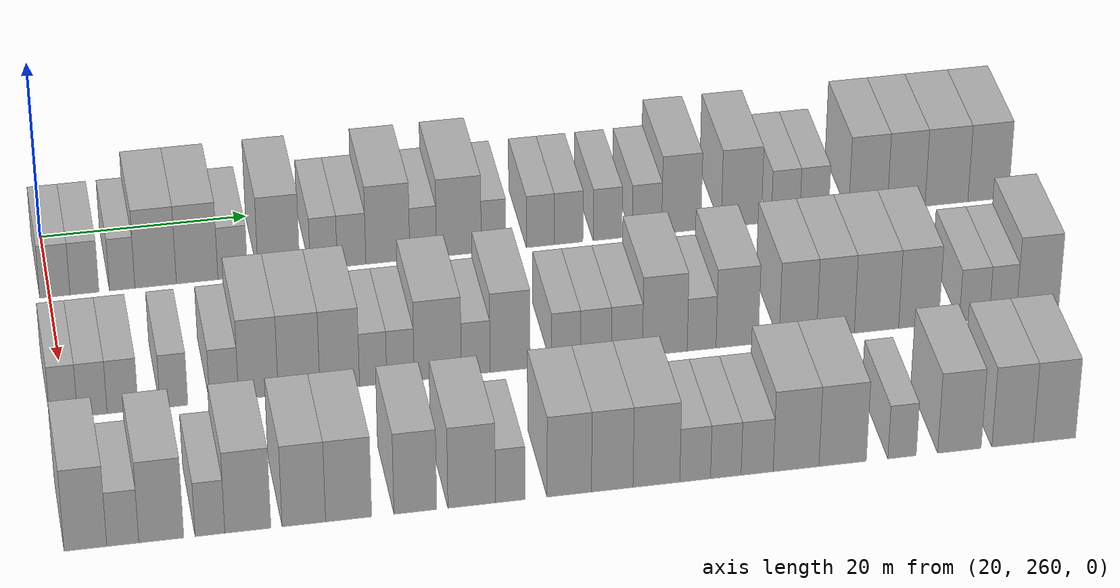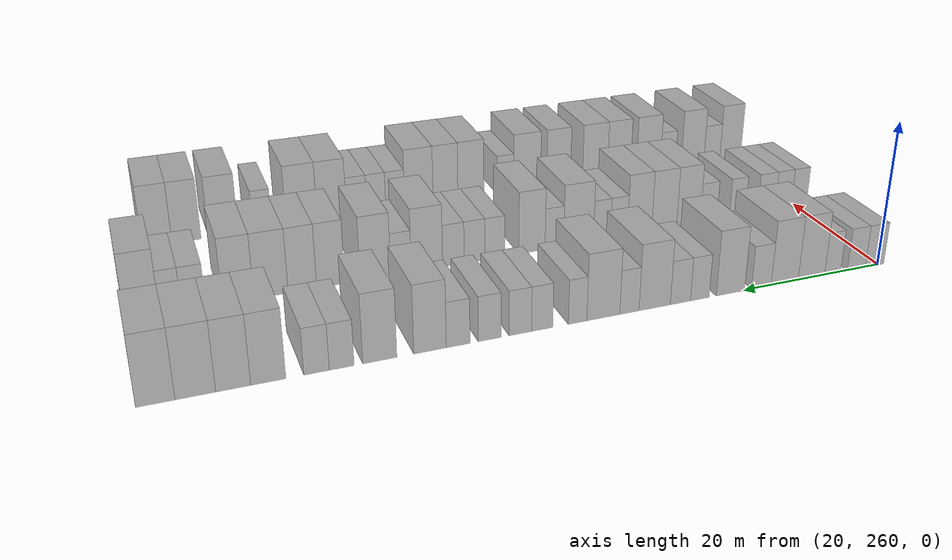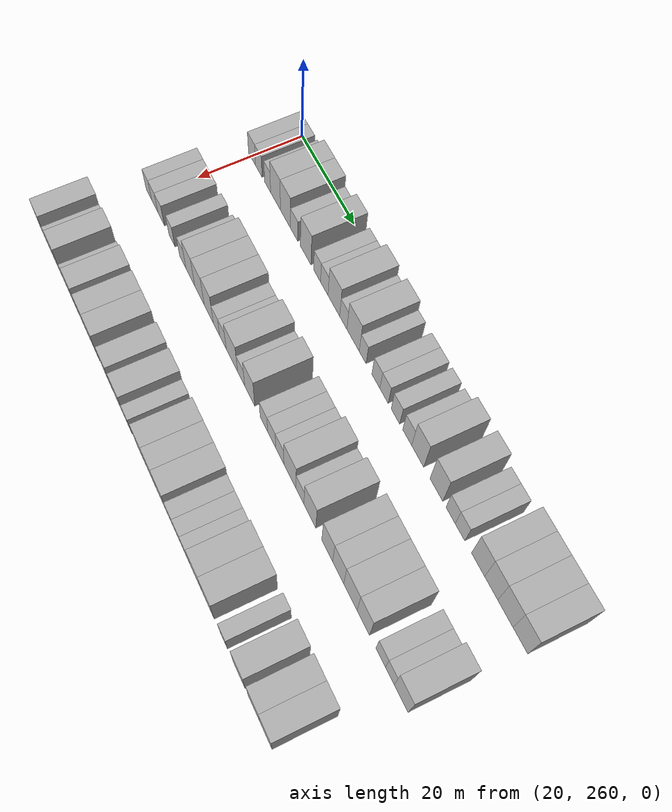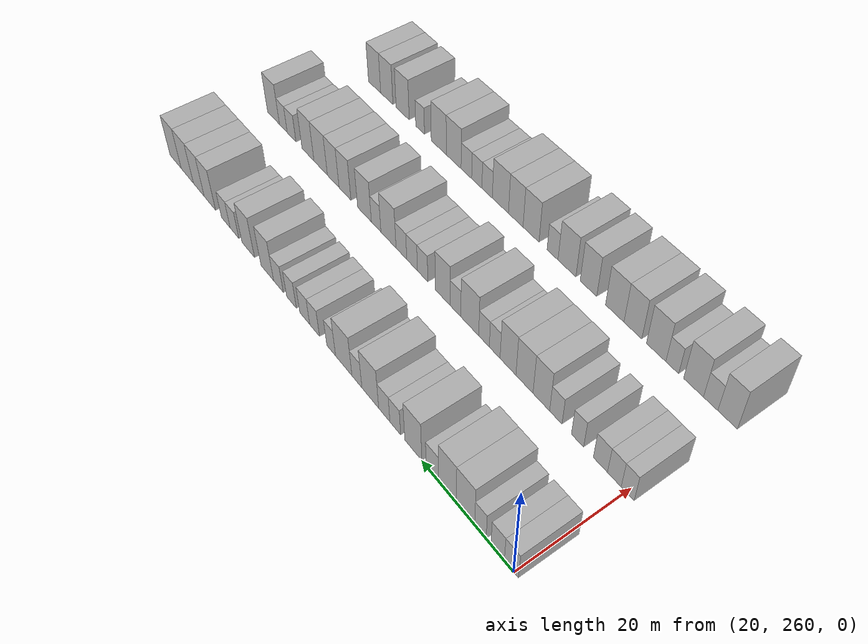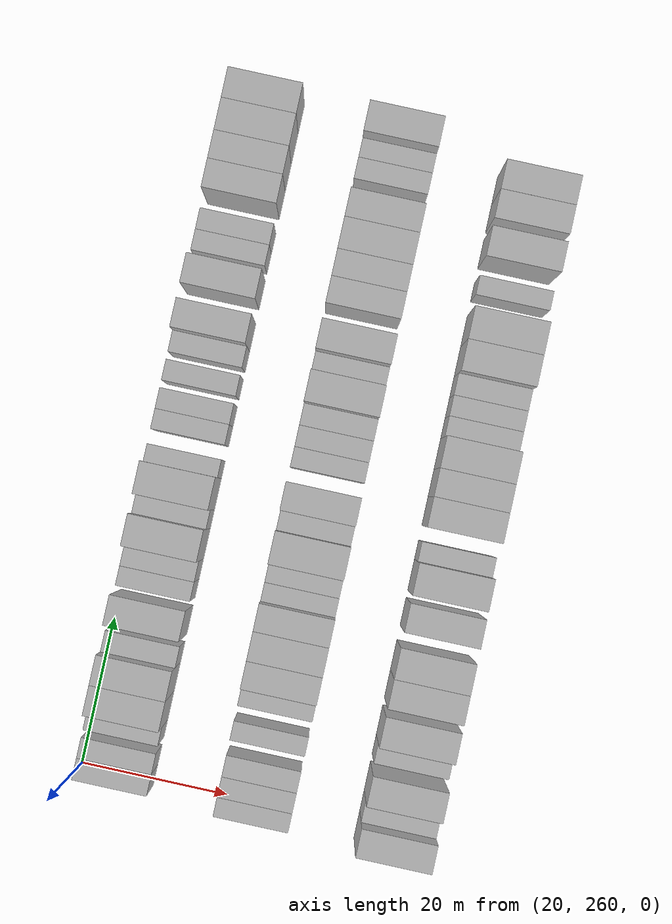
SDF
<sdf version="1.6">
 <world name="default">
  <model name="building_141">
   <static>1</static>
   <pose>25.0000 260.5089 0 0.000000 0.000000 0.000000</pose>
   <link name="link">
    <pose>0 0 3.00 0 0 0</pose>
    <collision name="collision"><geometry><box><size>10.0000 2.8779 6.0000</size></box></geometry></collision>
    <visual name="visual">
     <cast_shadows>0</cast_shadows>
     <geometry><box><size>10.0000 2.8779 6.0000</size></box></geometry>
     <material>
      <script>
       <uri>model://HANNAS_wall/materials/scripts</uri>
       <uri>model://HANNAS_wall/materials/textures</uri>
       <name>vrc/HANNAS_wall</name>
      </script>
     </material>
    </visual>
   </link>
  </model>
  <model name="building_142">
   <static>1</static>
   <pose>25.0000 263.3240 0 0.000000 0.000000 0.000000</pose>
   <link name="link">
    <pose>0 0 3.00 0 0 0</pose>
    <collision name="collision"><geometry><box><size>10.0000 2.7524 6.0000</size></box></geometry></collision>
    <visual name="visual">
     <cast_shadows>0</cast_shadows>
     <geometry><box><size>10.0000 2.7524 6.0000</size></box></geometry>
     <material>
      <script>
       <uri>model://HANNAS_wall/materials/scripts</uri>
       <uri>model://HANNAS_wall/materials/textures</uri>
       <name>vrc/HANNAS_wall</name>
      </script>
     </material>
    </visual>
   </link>
  </model>
  <model name="building_143">
   <static>1</static>
   <pose>25.0000 266.9167 0 0.000000 0.000000 0.000000</pose>
   <link name="link">
    <pose>0 0 3.00 0 0 0</pose>
    <collision name="collision"><geometry><box><size>10.0000 2.4330 6.0000</size></box></geometry></collision>
    <visual name="visual">
     <cast_shadows>0</cast_shadows>
     <geometry><box><size>10.0000 2.4330 6.0000</size></box></geometry>
     <material>
      <script>
       <uri>model://HANNAS_wall/materials/scripts</uri>
       <uri>model://HANNAS_wall/materials/textures</uri>
       <name>vrc/HANNAS_wall</name>
      </script>
     </material>
    </visual>
   </link>
  </model>
  <model name="building_144">
   <static>1</static>
   <pose>25.0000 270.1128 0 0.000000 0.000000 0.000000</pose>
   <link name="link">
    <pose>0 0 4.50 0 0 0</pose>
    <collision name="collision"><geometry><box><size>10.0000 3.9593 9.0000</size></box></geometry></collision>
    <visual name="visual">
     <cast_shadows>0</cast_shadows>
     <geometry><box><size>10.0000 3.9593 9.0000</size></box></geometry>
     <material>
      <script>
       <uri>model://HANNAS_wall/materials/scripts</uri>
       <uri>model://HANNAS_wall/materials/textures</uri>
       <name>vrc/HANNAS_wall</name>
      </script>
     </material>
    </visual>
   </link>
  </model>
  <model name="building_145">
   <static>1</static>
   <pose>25.0000 274.0836 0 0.000000 0.000000 0.000000</pose>
   <link name="link">
    <pose>0 0 4.50 0 0 0</pose>
    <collision name="collision"><geometry><box><size>10.0000 3.9822 9.0000</size></box></geometry></collision>
    <visual name="visual">
     <cast_shadows>0</cast_shadows>
     <geometry><box><size>10.0000 3.9822 9.0000</size></box></geometry>
     <material>
      <script>
       <uri>model://HANNAS_wall/materials/scripts</uri>
       <uri>model://HANNAS_wall/materials/textures</uri>
       <name>vrc/HANNAS_wall</name>
      </script>
     </material>
    </visual>
   </link>
  </model>
  <model name="building_146">
   <static>1</static>
   <pose>25.0000 277.5018 0 0.000000 0.000000 0.000000</pose>
   <link name="link">
    <pose>0 0 3.00 0 0 0</pose>
    <collision name="collision"><geometry><box><size>10.0000 2.8543 6.0000</size></box></geometry></collision>
    <visual name="visual">
     <cast_shadows>0</cast_shadows>
     <geometry><box><size>10.0000 2.8543 6.0000</size></box></geometry>
     <material>
      <script>
       <uri>model://HANNAS_wall/materials/scripts</uri>
       <uri>model://HANNAS_wall/materials/textures</uri>
       <name>vrc/HANNAS_wall</name>
      </script>
     </material>
    </visual>
   </link>
  </model>
  <model name="building_147">
   <static>1</static>
   <pose>25.0000 281.9419 0 0.000000 0.000000 0.000000</pose>
   <link name="link">
    <pose>0 0 4.50 0 0 0</pose>
    <collision name="collision"><geometry><box><size>10.0000 4.0259 9.0000</size></box></geometry></collision>
    <visual name="visual">
     <cast_shadows>0</cast_shadows>
     <geometry><box><size>10.0000 4.0259 9.0000</size></box></geometry>
     <material>
      <script>
       <uri>model://HANNAS_wall/materials/scripts</uri>
       <uri>model://HANNAS_wall/materials/textures</uri>
       <name>vrc/HANNAS_wall</name>
      </script>
     </material>
    </visual>
   </link>
  </model>
  <model name="building_148">
   <static>1</static>
   <pose>25.0000 286.2601 0 0.000000 0.000000 0.000000</pose>
   <link name="link">
    <pose>0 0 3.00 0 0 0</pose>
    <collision name="collision"><geometry><box><size>10.0000 2.6105 6.0000</size></box></geometry></collision>
    <visual name="visual">
     <cast_shadows>0</cast_shadows>
     <geometry><box><size>10.0000 2.6105 6.0000</size></box></geometry>
     <material>
      <script>
       <uri>model://HANNAS_wall/materials/scripts</uri>
       <uri>model://HANNAS_wall/materials/textures</uri>
       <name>vrc/HANNAS_wall</name>
      </script>
     </material>
    </visual>
   </link>
  </model>
  <model name="building_149">
   <static>1</static>
   <pose>25.0000 288.9540 0 0.000000 0.000000 0.000000</pose>
   <link name="link">
    <pose>0 0 3.00 0 0 0</pose>
    <collision name="collision"><geometry><box><size>10.0000 2.7773 6.0000</size></box></geometry></collision>
    <visual name="visual">
     <cast_shadows>0</cast_shadows>
     <geometry><box><size>10.0000 2.7773 6.0000</size></box></geometry>
     <material>
      <script>
       <uri>model://HANNAS_wall/materials/scripts</uri>
       <uri>model://HANNAS_wall/materials/textures</uri>
       <name>vrc/HANNAS_wall</name>
      </script>
     </material>
    </visual>
   </link>
  </model>
  <model name="building_150">
   <static>1</static>
   <pose>25.0000 292.4760 0 0.000000 0.000000 0.000000</pose>
   <link name="link">
    <pose>0 0 4.50 0 0 0</pose>
    <collision name="collision"><geometry><box><size>10.0000 4.2668 9.0000</size></box></geometry></collision>
    <visual name="visual">
     <cast_shadows>0</cast_shadows>
     <geometry><box><size>10.0000 4.2668 9.0000</size></box></geometry>
     <material>
      <script>
       <uri>model://HANNAS_wall/materials/scripts</uri>
       <uri>model://HANNAS_wall/materials/textures</uri>
       <name>vrc/HANNAS_wall</name>
      </script>
     </material>
    </visual>
   </link>
  </model>
  <model name="building_151">
   <static>1</static>
   <pose>25.0000 295.9064 0 0.000000 0.000000 0.000000</pose>
   <link name="link">
    <pose>0 0 3.00 0 0 0</pose>
    <collision name="collision"><geometry><box><size>10.0000 2.5939 6.0000</size></box></geometry></collision>
    <visual name="visual">
     <cast_shadows>0</cast_shadows>
     <geometry><box><size>10.0000 2.5939 6.0000</size></box></geometry>
     <material>
      <script>
       <uri>model://HANNAS_wall/materials/scripts</uri>
       <uri>model://HANNAS_wall/materials/textures</uri>
       <name>vrc/HANNAS_wall</name>
      </script>
     </material>
    </visual>
   </link>
  </model>
  <model name="building_152">
   <static>1</static>
   <pose>25.0000 299.3836 0 0.000000 0.000000 0.000000</pose>
   <link name="link">
    <pose>0 0 4.50 0 0 0</pose>
    <collision name="collision"><geometry><box><size>10.0000 4.3605 9.0000</size></box></geometry></collision>
    <visual name="visual">
     <cast_shadows>0</cast_shadows>
     <geometry><box><size>10.0000 4.3605 9.0000</size></box></geometry>
     <material>
      <script>
       <uri>model://HANNAS_wall/materials/scripts</uri>
       <uri>model://HANNAS_wall/materials/textures</uri>
       <name>vrc/HANNAS_wall</name>
      </script>
     </material>
    </visual>
   </link>
  </model>
  <model name="building_153">
   <static>1</static>
   <pose>25.0000 302.7668 0 0.000000 0.000000 0.000000</pose>
   <link name="link">
    <pose>0 0 3.00 0 0 0</pose>
    <collision name="collision"><geometry><box><size>10.0000 2.4058 6.0000</size></box></geometry></collision>
    <visual name="visual">
     <cast_shadows>0</cast_shadows>
     <geometry><box><size>10.0000 2.4058 6.0000</size></box></geometry>
     <material>
      <script>
       <uri>model://HANNAS_wall/materials/scripts</uri>
       <uri>model://HANNAS_wall/materials/textures</uri>
       <name>vrc/HANNAS_wall</name>
      </script>
     </material>
    </visual>
   </link>
  </model>
  <model name="building_154">
   <static>1</static>
   <pose>25.0000 307.3375 0 0.000000 0.000000 0.000000</pose>
   <link name="link">
    <pose>0 0 3.00 0 0 0</pose>
    <collision name="collision"><geometry><box><size>10.0000 2.7355 6.0000</size></box></geometry></collision>
    <visual name="visual">
     <cast_shadows>0</cast_shadows>
     <geometry><box><size>10.0000 2.7355 6.0000</size></box></geometry>
     <material>
      <script>
       <uri>model://HANNAS_wall/materials/scripts</uri>
       <uri>model://HANNAS_wall/materials/textures</uri>
       <name>vrc/HANNAS_wall</name>
      </script>
     </material>
    </visual>
   </link>
  </model>
  <model name="building_155">
   <static>1</static>
   <pose>25.0000 310.1186 0 0.000000 0.000000 0.000000</pose>
   <link name="link">
    <pose>0 0 3.00 0 0 0</pose>
    <collision name="collision"><geometry><box><size>10.0000 2.8268 6.0000</size></box></geometry></collision>
    <visual name="visual">
     <cast_shadows>0</cast_shadows>
     <geometry><box><size>10.0000 2.8268 6.0000</size></box></geometry>
     <material>
      <script>
       <uri>model://HANNAS_wall/materials/scripts</uri>
       <uri>model://HANNAS_wall/materials/textures</uri>
       <name>vrc/HANNAS_wall</name>
      </script>
     </material>
    </visual>
   </link>
  </model>
  <model name="building_156">
   <static>1</static>
   <pose>25.0000 313.9478 0 0.000000 0.000000 0.000000</pose>
   <link name="link">
    <pose>0 0 3.00 0 0 0</pose>
    <collision name="collision"><geometry><box><size>10.0000 2.8316 6.0000</size></box></geometry></collision>
    <visual name="visual">
     <cast_shadows>0</cast_shadows>
     <geometry><box><size>10.0000 2.8316 6.0000</size></box></geometry>
     <material>
      <script>
       <uri>model://HANNAS_wall/materials/scripts</uri>
       <uri>model://HANNAS_wall/materials/textures</uri>
       <name>vrc/HANNAS_wall</name>
      </script>
     </material>
    </visual>
   </link>
  </model>
  <model name="building_157">
   <static>1</static>
   <pose>25.0000 317.8204 0 0.000000 0.000000 0.000000</pose>
   <link name="link">
    <pose>0 0 3.00 0 0 0</pose>
    <collision name="collision"><geometry><box><size>10.0000 2.9136 6.0000</size></box></geometry></collision>
    <visual name="visual">
     <cast_shadows>0</cast_shadows>
     <geometry><box><size>10.0000 2.9136 6.0000</size></box></geometry>
     <material>
      <script>
       <uri>model://HANNAS_wall/materials/scripts</uri>
       <uri>model://HANNAS_wall/materials/textures</uri>
       <name>vrc/HANNAS_wall</name>
      </script>
     </material>
    </visual>
   </link>
  </model>
  <model name="building_158">
   <static>1</static>
   <pose>25.0000 321.2224 0 0.000000 0.000000 0.000000</pose>
   <link name="link">
    <pose>0 0 4.50 0 0 0</pose>
    <collision name="collision"><geometry><box><size>10.0000 3.8902 9.0000</size></box></geometry></collision>
    <visual name="visual">
     <cast_shadows>0</cast_shadows>
     <geometry><box><size>10.0000 3.8902 9.0000</size></box></geometry>
     <material>
      <script>
       <uri>model://HANNAS_wall/materials/scripts</uri>
       <uri>model://HANNAS_wall/materials/textures</uri>
       <name>vrc/HANNAS_wall</name>
      </script>
     </material>
    </visual>
   </link>
  </model>
  <model name="building_159">
   <static>1</static>
   <pose>25.0000 327.1652 0 0.000000 0.000000 0.000000</pose>
   <link name="link">
    <pose>0 0 4.50 0 0 0</pose>
    <collision name="collision"><geometry><box><size>10.0000 3.9955 9.0000</size></box></geometry></collision>
    <visual name="visual">
     <cast_shadows>0</cast_shadows>
     <geometry><box><size>10.0000 3.9955 9.0000</size></box></geometry>
     <material>
      <script>
       <uri>model://HANNAS_wall/materials/scripts</uri>
       <uri>model://HANNAS_wall/materials/textures</uri>
       <name>vrc/HANNAS_wall</name>
      </script>
     </material>
    </visual>
   </link>
  </model>
  <model name="building_160">
   <static>1</static>
   <pose>25.0000 331.5849 0 0.000000 0.000000 0.000000</pose>
   <link name="link">
    <pose>0 0 3.00 0 0 0</pose>
    <collision name="collision"><geometry><box><size>10.0000 2.8438 6.0000</size></box></geometry></collision>
    <visual name="visual">
     <cast_shadows>0</cast_shadows>
     <geometry><box><size>10.0000 2.8438 6.0000</size></box></geometry>
     <material>
      <script>
       <uri>model://HANNAS_wall/materials/scripts</uri>
       <uri>model://HANNAS_wall/materials/textures</uri>
       <name>vrc/HANNAS_wall</name>
      </script>
     </material>
    </visual>
   </link>
  </model>
  <model name="building_161">
   <static>1</static>
   <pose>25.0000 334.4466 0 0.000000 0.000000 0.000000</pose>
   <link name="link">
    <pose>0 0 3.00 0 0 0</pose>
    <collision name="collision"><geometry><box><size>10.0000 2.8797 6.0000</size></box></geometry></collision>
    <visual name="visual">
     <cast_shadows>0</cast_shadows>
     <geometry><box><size>10.0000 2.8797 6.0000</size></box></geometry>
     <material>
      <script>
       <uri>model://HANNAS_wall/materials/scripts</uri>
       <uri>model://HANNAS_wall/materials/textures</uri>
       <name>vrc/HANNAS_wall</name>
      </script>
     </material>
    </visual>
   </link>
  </model>
  <model name="building_162">
   <static>1</static>
   <pose>25.0000 339.8237 0 0.000000 0.000000 0.000000</pose>
   <link name="link">
    <pose>0 0 4.50 0 0 0</pose>
    <collision name="collision"><geometry><box><size>10.0000 3.8745 9.0000</size></box></geometry></collision>
    <visual name="visual">
     <cast_shadows>0</cast_shadows>
     <geometry><box><size>10.0000 3.8745 9.0000</size></box></geometry>
     <material>
      <script>
       <uri>model://HANNAS_wall/materials/scripts</uri>
       <uri>model://HANNAS_wall/materials/textures</uri>
       <name>vrc/HANNAS_wall</name>
      </script>
     </material>
    </visual>
   </link>
  </model>
  <model name="building_163">
   <static>1</static>
   <pose>25.0000 343.6578 0 0.000000 0.000000 0.000000</pose>
   <link name="link">
    <pose>0 0 4.50 0 0 0</pose>
    <collision name="collision"><geometry><box><size>10.0000 3.7937 9.0000</size></box></geometry></collision>
    <visual name="visual">
     <cast_shadows>0</cast_shadows>
     <geometry><box><size>10.0000 3.7937 9.0000</size></box></geometry>
     <material>
      <script>
       <uri>model://HANNAS_wall/materials/scripts</uri>
       <uri>model://HANNAS_wall/materials/textures</uri>
       <name>vrc/HANNAS_wall</name>
      </script>
     </material>
    </visual>
   </link>
  </model>
  <model name="building_164">
   <static>1</static>
   <pose>25.0000 347.7195 0 0.000000 0.000000 0.000000</pose>
   <link name="link">
    <pose>0 0 4.50 0 0 0</pose>
    <collision name="collision"><geometry><box><size>10.0000 4.3298 9.0000</size></box></geometry></collision>
    <visual name="visual">
     <cast_shadows>0</cast_shadows>
     <geometry><box><size>10.0000 4.3298 9.0000</size></box></geometry>
     <material>
      <script>
       <uri>model://HANNAS_wall/materials/scripts</uri>
       <uri>model://HANNAS_wall/materials/textures</uri>
       <name>vrc/HANNAS_wall</name>
      </script>
     </material>
    </visual>
   </link>
  </model>
  <model name="building_165">
   <static>1</static>
   <pose>25.0000 351.9411 0 0.000000 0.000000 0.000000</pose>
   <link name="link">
    <pose>0 0 4.50 0 0 0</pose>
    <collision name="collision"><geometry><box><size>10.0000 4.1134 9.0000</size></box></geometry></collision>
    <visual name="visual">
     <cast_shadows>0</cast_shadows>
     <geometry><box><size>10.0000 4.1134 9.0000</size></box></geometry>
     <material>
      <script>
       <uri>model://HANNAS_wall/materials/scripts</uri>
       <uri>model://HANNAS_wall/materials/textures</uri>
       <name>vrc/HANNAS_wall</name>
      </script>
     </material>
    </visual>
   </link>
  </model>
  <model name="building_310">
   <static>1</static>
   <pose>44.0000 259.6723 0 0.000000 0.000000 0.000000</pose>
   <link name="link">
    <pose>0 0 3.00 0 0 0</pose>
    <collision name="collision"><geometry><box><size>10.0000 2.5391 6.0000</size></box></geometry></collision>
    <visual name="visual">
     <cast_shadows>0</cast_shadows>
     <geometry><box><size>10.0000 2.5391 6.0000</size></box></geometry>
     <material>
      <script>
       <uri>model://HANNAS_wall/materials/scripts</uri>
       <uri>model://HANNAS_wall/materials/textures</uri>
       <name>vrc/HANNAS_wall</name>
      </script>
     </material>
    </visual>
   </link>
  </model>
  <model name="building_311">
   <static>1</static>
   <pose>44.0000 262.3021 0 0.000000 0.000000 0.000000</pose>
   <link name="link">
    <pose>0 0 3.00 0 0 0</pose>
    <collision name="collision"><geometry><box><size>10.0000 2.7205 6.0000</size></box></geometry></collision>
    <visual name="visual">
     <cast_shadows>0</cast_shadows>
     <geometry><box><size>10.0000 2.7205 6.0000</size></box></geometry>
     <material>
      <script>
       <uri>model://HANNAS_wall/materials/scripts</uri>
       <uri>model://HANNAS_wall/materials/textures</uri>
       <name>vrc/HANNAS_wall</name>
      </script>
     </material>
    </visual>
   </link>
  </model>
  <model name="building_312">
   <static>1</static>
   <pose>44.0000 265.0918 0 0.000000 0.000000 0.000000</pose>
   <link name="link">
    <pose>0 0 3.00 0 0 0</pose>
    <collision name="collision"><geometry><box><size>10.0000 2.8590 6.0000</size></box></geometry></collision>
    <visual name="visual">
     <cast_shadows>0</cast_shadows>
     <geometry><box><size>10.0000 2.8590 6.0000</size></box></geometry>
     <material>
      <script>
       <uri>model://HANNAS_wall/materials/scripts</uri>
       <uri>model://HANNAS_wall/materials/textures</uri>
       <name>vrc/HANNAS_wall</name>
      </script>
     </material>
    </visual>
   </link>
  </model>
  <model name="building_313">
   <static>1</static>
   <pose>44.0000 269.8037 0 0.000000 0.000000 0.000000</pose>
   <link name="link">
    <pose>0 0 3.00 0 0 0</pose>
    <collision name="collision"><geometry><box><size>10.0000 2.5648 6.0000</size></box></geometry></collision>
    <visual name="visual">
     <cast_shadows>0</cast_shadows>
     <geometry><box><size>10.0000 2.5648 6.0000</size></box></geometry>
     <material>
      <script>
       <uri>model://HANNAS_wall/materials/scripts</uri>
       <uri>model://HANNAS_wall/materials/textures</uri>
       <name>vrc/HANNAS_wall</name>
      </script>
     </material>
    </visual>
   </link>
  </model>
  <model name="building_314">
   <static>1</static>
   <pose>44.0000 274.4259 0 0.000000 0.000000 0.000000</pose>
   <link name="link">
    <pose>0 0 3.00 0 0 0</pose>
    <collision name="collision"><geometry><box><size>10.0000 2.6795 6.0000</size></box></geometry></collision>
    <visual name="visual">
     <cast_shadows>0</cast_shadows>
     <geometry><box><size>10.0000 2.6795 6.0000</size></box></geometry>
     <material>
      <script>
       <uri>model://HANNAS_wall/materials/scripts</uri>
       <uri>model://HANNAS_wall/materials/textures</uri>
       <name>vrc/HANNAS_wall</name>
      </script>
     </material>
    </visual>
   </link>
  </model>
  <model name="building_315">
   <static>1</static>
   <pose>44.0000 277.6017 0 0.000000 0.000000 0.000000</pose>
   <link name="link">
    <pose>0 0 4.50 0 0 0</pose>
    <collision name="collision"><geometry><box><size>10.0000 3.6722 9.0000</size></box></geometry></collision>
    <visual name="visual">
     <cast_shadows>0</cast_shadows>
     <geometry><box><size>10.0000 3.6722 9.0000</size></box></geometry>
     <material>
      <script>
       <uri>model://HANNAS_wall/materials/scripts</uri>
       <uri>model://HANNAS_wall/materials/textures</uri>
       <name>vrc/HANNAS_wall</name>
      </script>
     </material>
    </visual>
   </link>
  </model>
  <model name="building_316">
   <static>1</static>
   <pose>44.0000 281.3744 0 0.000000 0.000000 0.000000</pose>
   <link name="link">
    <pose>0 0 4.50 0 0 0</pose>
    <collision name="collision"><geometry><box><size>10.0000 3.8732 9.0000</size></box></geometry></collision>
    <visual name="visual">
     <cast_shadows>0</cast_shadows>
     <geometry><box><size>10.0000 3.8732 9.0000</size></box></geometry>
     <material>
      <script>
       <uri>model://HANNAS_wall/materials/scripts</uri>
       <uri>model://HANNAS_wall/materials/textures</uri>
       <name>vrc/HANNAS_wall</name>
      </script>
     </material>
    </visual>
   </link>
  </model>
  <model name="building_317">
   <static>1</static>
   <pose>44.0000 285.1554 0 0.000000 0.000000 0.000000</pose>
   <link name="link">
    <pose>0 0 4.50 0 0 0</pose>
    <collision name="collision"><geometry><box><size>10.0000 3.6886 9.0000</size></box></geometry></collision>
    <visual name="visual">
     <cast_shadows>0</cast_shadows>
     <geometry><box><size>10.0000 3.6886 9.0000</size></box></geometry>
     <material>
      <script>
       <uri>model://HANNAS_wall/materials/scripts</uri>
       <uri>model://HANNAS_wall/materials/textures</uri>
       <name>vrc/HANNAS_wall</name>
      </script>
     </material>
    </visual>
   </link>
  </model>
  <model name="building_318">
   <static>1</static>
   <pose>44.0000 288.2712 0 0.000000 0.000000 0.000000</pose>
   <link name="link">
    <pose>0 0 3.00 0 0 0</pose>
    <collision name="collision"><geometry><box><size>10.0000 2.5431 6.0000</size></box></geometry></collision>
    <visual name="visual">
     <cast_shadows>0</cast_shadows>
     <geometry><box><size>10.0000 2.5431 6.0000</size></box></geometry>
     <material>
      <script>
       <uri>model://HANNAS_wall/materials/scripts</uri>
       <uri>model://HANNAS_wall/materials/textures</uri>
       <name>vrc/HANNAS_wall</name>
      </script>
     </material>
    </visual>
   </link>
  </model>
  <model name="building_319">
   <static>1</static>
   <pose>44.0000 290.8246 0 0.000000 0.000000 0.000000</pose>
   <link name="link">
    <pose>0 0 3.00 0 0 0</pose>
    <collision name="collision"><geometry><box><size>10.0000 2.5637 6.0000</size></box></geometry></collision>
    <visual name="visual">
     <cast_shadows>0</cast_shadows>
     <geometry><box><size>10.0000 2.5637 6.0000</size></box></geometry>
     <material>
      <script>
       <uri>model://HANNAS_wall/materials/scripts</uri>
       <uri>model://HANNAS_wall/materials/textures</uri>
       <name>vrc/HANNAS_wall</name>
      </script>
     </material>
    </visual>
   </link>
  </model>
  <model name="building_320">
   <static>1</static>
   <pose>44.0000 294.3132 0 0.000000 0.000000 0.000000</pose>
   <link name="link">
    <pose>0 0 4.50 0 0 0</pose>
    <collision name="collision"><geometry><box><size>10.0000 4.4134 9.0000</size></box></geometry></collision>
    <visual name="visual">
     <cast_shadows>0</cast_shadows>
     <geometry><box><size>10.0000 4.4134 9.0000</size></box></geometry>
     <material>
      <script>
       <uri>model://HANNAS_wall/materials/scripts</uri>
       <uri>model://HANNAS_wall/materials/textures</uri>
       <name>vrc/HANNAS_wall</name>
      </script>
     </material>
    </visual>
   </link>
  </model>
  <model name="building_321">
   <static>1</static>
   <pose>44.0000 297.8678 0 0.000000 0.000000 0.000000</pose>
   <link name="link">
    <pose>0 0 3.00 0 0 0</pose>
    <collision name="collision"><geometry><box><size>10.0000 2.6958 6.0000</size></box></geometry></collision>
    <visual name="visual">
     <cast_shadows>0</cast_shadows>
     <geometry><box><size>10.0000 2.6958 6.0000</size></box></geometry>
     <material>
      <script>
       <uri>model://HANNAS_wall/materials/scripts</uri>
       <uri>model://HANNAS_wall/materials/textures</uri>
       <name>vrc/HANNAS_wall</name>
      </script>
     </material>
    </visual>
   </link>
  </model>
  <model name="building_322">
   <static>1</static>
   <pose>44.0000 301.1078 0 0.000000 0.000000 0.000000</pose>
   <link name="link">
    <pose>0 0 4.50 0 0 0</pose>
    <collision name="collision"><geometry><box><size>10.0000 3.7843 9.0000</size></box></geometry></collision>
    <visual name="visual">
     <cast_shadows>0</cast_shadows>
     <geometry><box><size>10.0000 3.7843 9.0000</size></box></geometry>
     <material>
      <script>
       <uri>model://HANNAS_wall/materials/scripts</uri>
       <uri>model://HANNAS_wall/materials/textures</uri>
       <name>vrc/HANNAS_wall</name>
      </script>
     </material>
    </visual>
   </link>
  </model>
  <model name="building_323">
   <static>1</static>
   <pose>44.0000 306.3770 0 0.000000 0.000000 0.000000</pose>
   <link name="link">
    <pose>0 0 3.00 0 0 0</pose>
    <collision name="collision"><geometry><box><size>10.0000 2.7541 6.0000</size></box></geometry></collision>
    <visual name="visual">
     <cast_shadows>0</cast_shadows>
     <geometry><box><size>10.0000 2.7541 6.0000</size></box></geometry>
     <material>
      <script>
       <uri>model://HANNAS_wall/materials/scripts</uri>
       <uri>model://HANNAS_wall/materials/textures</uri>
       <name>vrc/HANNAS_wall</name>
      </script>
     </material>
    </visual>
   </link>
  </model>
  <model name="building_324">
   <static>1</static>
   <pose>44.0000 309.2052 0 0.000000 0.000000 0.000000</pose>
   <link name="link">
    <pose>0 0 3.00 0 0 0</pose>
    <collision name="collision"><geometry><box><size>10.0000 2.9022 6.0000</size></box></geometry></collision>
    <visual name="visual">
     <cast_shadows>0</cast_shadows>
     <geometry><box><size>10.0000 2.9022 6.0000</size></box></geometry>
     <material>
      <script>
       <uri>model://HANNAS_wall/materials/scripts</uri>
       <uri>model://HANNAS_wall/materials/textures</uri>
       <name>vrc/HANNAS_wall</name>
      </script>
     </material>
    </visual>
   </link>
  </model>
  <model name="building_325">
   <static>1</static>
   <pose>44.0000 312.1345 0 0.000000 0.000000 0.000000</pose>
   <link name="link">
    <pose>0 0 3.00 0 0 0</pose>
    <collision name="collision"><geometry><box><size>10.0000 2.9565 6.0000</size></box></geometry></collision>
    <visual name="visual">
     <cast_shadows>0</cast_shadows>
     <geometry><box><size>10.0000 2.9565 6.0000</size></box></geometry>
     <material>
      <script>
       <uri>model://HANNAS_wall/materials/scripts</uri>
       <uri>model://HANNAS_wall/materials/textures</uri>
       <name>vrc/HANNAS_wall</name>
      </script>
     </material>
    </visual>
   </link>
  </model>
  <model name="building_326">
   <static>1</static>
   <pose>44.0000 315.7418 0 0.000000 0.000000 0.000000</pose>
   <link name="link">
    <pose>0 0 4.50 0 0 0</pose>
    <collision name="collision"><geometry><box><size>10.0000 4.2580 9.0000</size></box></geometry></collision>
    <visual name="visual">
     <cast_shadows>0</cast_shadows>
     <geometry><box><size>10.0000 4.2580 9.0000</size></box></geometry>
     <material>
      <script>
       <uri>model://HANNAS_wall/materials/scripts</uri>
       <uri>model://HANNAS_wall/materials/textures</uri>
       <name>vrc/HANNAS_wall</name>
      </script>
     </material>
    </visual>
   </link>
  </model>
  <model name="building_327">
   <static>1</static>
   <pose>44.0000 319.2476 0 0.000000 0.000000 0.000000</pose>
   <link name="link">
    <pose>0 0 3.00 0 0 0</pose>
    <collision name="collision"><geometry><box><size>10.0000 2.7536 6.0000</size></box></geometry></collision>
    <visual name="visual">
     <cast_shadows>0</cast_shadows>
     <geometry><box><size>10.0000 2.7536 6.0000</size></box></geometry>
     <material>
      <script>
       <uri>model://HANNAS_wall/materials/scripts</uri>
       <uri>model://HANNAS_wall/materials/textures</uri>
       <name>vrc/HANNAS_wall</name>
      </script>
     </material>
    </visual>
   </link>
  </model>
  <model name="building_328">
   <static>1</static>
   <pose>44.0000 322.6414 0 0.000000 0.000000 0.000000</pose>
   <link name="link">
    <pose>0 0 4.50 0 0 0</pose>
    <collision name="collision"><geometry><box><size>10.0000 4.0341 9.0000</size></box></geometry></collision>
    <visual name="visual">
     <cast_shadows>0</cast_shadows>
     <geometry><box><size>10.0000 4.0341 9.0000</size></box></geometry>
     <material>
      <script>
       <uri>model://HANNAS_wall/materials/scripts</uri>
       <uri>model://HANNAS_wall/materials/textures</uri>
       <name>vrc/HANNAS_wall</name>
      </script>
     </material>
    </visual>
   </link>
  </model>
  <model name="building_329">
   <static>1</static>
   <pose>44.0000 328.4628 0 0.000000 0.000000 0.000000</pose>
   <link name="link">
    <pose>0 0 4.50 0 0 0</pose>
    <collision name="collision"><geometry><box><size>10.0000 3.6087 9.0000</size></box></geometry></collision>
    <visual name="visual">
     <cast_shadows>0</cast_shadows>
     <geometry><box><size>10.0000 3.6087 9.0000</size></box></geometry>
     <material>
      <script>
       <uri>model://HANNAS_wall/materials/scripts</uri>
       <uri>model://HANNAS_wall/materials/textures</uri>
       <name>vrc/HANNAS_wall</name>
      </script>
     </material>
    </visual>
   </link>
  </model>
  <model name="building_330">
   <static>1</static>
   <pose>44.0000 332.0768 0 0.000000 0.000000 0.000000</pose>
   <link name="link">
    <pose>0 0 4.50 0 0 0</pose>
    <collision name="collision"><geometry><box><size>10.0000 3.6192 9.0000</size></box></geometry></collision>
    <visual name="visual">
     <cast_shadows>0</cast_shadows>
     <geometry><box><size>10.0000 3.6192 9.0000</size></box></geometry>
     <material>
      <script>
       <uri>model://HANNAS_wall/materials/scripts</uri>
       <uri>model://HANNAS_wall/materials/textures</uri>
       <name>vrc/HANNAS_wall</name>
      </script>
     </material>
    </visual>
   </link>
  </model>
  <model name="building_331">
   <static>1</static>
   <pose>44.0000 336.0245 0 0.000000 0.000000 0.000000</pose>
   <link name="link">
    <pose>0 0 4.50 0 0 0</pose>
    <collision name="collision"><geometry><box><size>10.0000 4.2761 9.0000</size></box></geometry></collision>
    <visual name="visual">
     <cast_shadows>0</cast_shadows>
     <geometry><box><size>10.0000 4.2761 9.0000</size></box></geometry>
     <material>
      <script>
       <uri>model://HANNAS_wall/materials/scripts</uri>
       <uri>model://HANNAS_wall/materials/textures</uri>
       <name>vrc/HANNAS_wall</name>
      </script>
     </material>
    </visual>
   </link>
  </model>
  <model name="building_332">
   <static>1</static>
   <pose>44.0000 340.1063 0 0.000000 0.000000 0.000000</pose>
   <link name="link">
    <pose>0 0 4.50 0 0 0</pose>
    <collision name="collision"><geometry><box><size>10.0000 3.8875 9.0000</size></box></geometry></collision>
    <visual name="visual">
     <cast_shadows>0</cast_shadows>
     <geometry><box><size>10.0000 3.8875 9.0000</size></box></geometry>
     <material>
      <script>
       <uri>model://HANNAS_wall/materials/scripts</uri>
       <uri>model://HANNAS_wall/materials/textures</uri>
       <name>vrc/HANNAS_wall</name>
      </script>
     </material>
    </visual>
   </link>
  </model>
  <model name="building_333">
   <static>1</static>
   <pose>44.0000 345.5084 0 0.000000 0.000000 0.000000</pose>
   <link name="link">
    <pose>0 0 3.00 0 0 0</pose>
    <collision name="collision"><geometry><box><size>10.0000 2.9168 6.0000</size></box></geometry></collision>
    <visual name="visual">
     <cast_shadows>0</cast_shadows>
     <geometry><box><size>10.0000 2.9168 6.0000</size></box></geometry>
     <material>
      <script>
       <uri>model://HANNAS_wall/materials/scripts</uri>
       <uri>model://HANNAS_wall/materials/textures</uri>
       <name>vrc/HANNAS_wall</name>
      </script>
     </material>
    </visual>
   </link>
  </model>
  <model name="building_334">
   <static>1</static>
   <pose>44.0000 348.2814 0 0.000000 0.000000 0.000000</pose>
   <link name="link">
    <pose>0 0 3.00 0 0 0</pose>
    <collision name="collision"><geometry><box><size>10.0000 2.6292 6.0000</size></box></geometry></collision>
    <visual name="visual">
     <cast_shadows>0</cast_shadows>
     <geometry><box><size>10.0000 2.6292 6.0000</size></box></geometry>
     <material>
      <script>
       <uri>model://HANNAS_wall/materials/scripts</uri>
       <uri>model://HANNAS_wall/materials/textures</uri>
       <name>vrc/HANNAS_wall</name>
      </script>
     </material>
    </visual>
   </link>
  </model>
  <model name="building_335">
   <static>1</static>
   <pose>44.0000 351.6522 0 0.000000 0.000000 0.000000</pose>
   <link name="link">
    <pose>0 0 4.50 0 0 0</pose>
    <collision name="collision"><geometry><box><size>10.0000 4.1125 9.0000</size></box></geometry></collision>
    <visual name="visual">
     <cast_shadows>0</cast_shadows>
     <geometry><box><size>10.0000 4.1125 9.0000</size></box></geometry>
     <material>
      <script>
       <uri>model://HANNAS_wall/materials/scripts</uri>
       <uri>model://HANNAS_wall/materials/textures</uri>
       <name>vrc/HANNAS_wall</name>
      </script>
     </material>
    </visual>
   </link>
  </model>
  <model name="building_483">
   <static>1</static>
   <pose>63.0000 259.9309 0 0.000000 0.000000 0.000000</pose>
   <link name="link">
    <pose>0 0 4.50 0 0 0</pose>
    <collision name="collision"><geometry><box><size>10.0000 3.7569 9.0000</size></box></geometry></collision>
    <visual name="visual">
     <cast_shadows>0</cast_shadows>
     <geometry><box><size>10.0000 3.7569 9.0000</size></box></geometry>
     <material>
      <script>
       <uri>model://HANNAS_wall/materials/scripts</uri>
       <uri>model://HANNAS_wall/materials/textures</uri>
       <name>vrc/HANNAS_wall</name>
      </script>
     </material>
    </visual>
   </link>
  </model>
  <model name="building_484">
   <static>1</static>
   <pose>63.0000 263.2208 0 0.000000 0.000000 0.000000</pose>
   <link name="link">
    <pose>0 0 3.00 0 0 0</pose>
    <collision name="collision"><geometry><box><size>10.0000 2.8230 6.0000</size></box></geometry></collision>
    <visual name="visual">
     <cast_shadows>0</cast_shadows>
     <geometry><box><size>10.0000 2.8230 6.0000</size></box></geometry>
     <material>
      <script>
       <uri>model://HANNAS_wall/materials/scripts</uri>
       <uri>model://HANNAS_wall/materials/textures</uri>
       <name>vrc/HANNAS_wall</name>
      </script>
     </material>
    </visual>
   </link>
  </model>
  <model name="building_485">
   <static>1</static>
   <pose>63.0000 266.6214 0 0.000000 0.000000 0.000000</pose>
   <link name="link">
    <pose>0 0 4.50 0 0 0</pose>
    <collision name="collision"><geometry><box><size>10.0000 3.9783 9.0000</size></box></geometry></collision>
    <visual name="visual">
     <cast_shadows>0</cast_shadows>
     <geometry><box><size>10.0000 3.9783 9.0000</size></box></geometry>
     <material>
      <script>
       <uri>model://HANNAS_wall/materials/scripts</uri>
       <uri>model://HANNAS_wall/materials/textures</uri>
       <name>vrc/HANNAS_wall</name>
      </script>
     </material>
    </visual>
   </link>
  </model>
  <model name="building_486">
   <static>1</static>
   <pose>63.0000 270.9313 0 0.000000 0.000000 0.000000</pose>
   <link name="link">
    <pose>0 0 3.00 0 0 0</pose>
    <collision name="collision"><geometry><box><size>10.0000 2.6414 6.0000</size></box></geometry></collision>
    <visual name="visual">
     <cast_shadows>0</cast_shadows>
     <geometry><box><size>10.0000 2.6414 6.0000</size></box></geometry>
     <material>
      <script>
       <uri>model://HANNAS_wall/materials/scripts</uri>
       <uri>model://HANNAS_wall/materials/textures</uri>
       <name>vrc/HANNAS_wall</name>
      </script>
     </material>
    </visual>
   </link>
  </model>
  <model name="building_487">
   <static>1</static>
   <pose>63.0000 274.2984 0 0.000000 0.000000 0.000000</pose>
   <link name="link">
    <pose>0 0 4.50 0 0 0</pose>
    <collision name="collision"><geometry><box><size>10.0000 4.0928 9.0000</size></box></geometry></collision>
    <visual name="visual">
     <cast_shadows>0</cast_shadows>
     <geometry><box><size>10.0000 4.0928 9.0000</size></box></geometry>
     <material>
      <script>
       <uri>model://HANNAS_wall/materials/scripts</uri>
       <uri>model://HANNAS_wall/materials/textures</uri>
       <name>vrc/HANNAS_wall</name>
      </script>
     </material>
    </visual>
   </link>
  </model>
  <model name="building_488">
   <static>1</static>
   <pose>63.0000 279.2852 0 0.000000 0.000000 0.000000</pose>
   <link name="link">
    <pose>0 0 4.50 0 0 0</pose>
    <collision name="collision"><geometry><box><size>10.0000 3.8807 9.0000</size></box></geometry></collision>
    <visual name="visual">
     <cast_shadows>0</cast_shadows>
     <geometry><box><size>10.0000 3.8807 9.0000</size></box></geometry>
     <material>
      <script>
       <uri>model://HANNAS_wall/materials/scripts</uri>
       <uri>model://HANNAS_wall/materials/textures</uri>
       <name>vrc/HANNAS_wall</name>
      </script>
     </material>
    </visual>
   </link>
  </model>
  <model name="building_489">
   <static>1</static>
   <pose>63.0000 283.2886 0 0.000000 0.000000 0.000000</pose>
   <link name="link">
    <pose>0 0 4.50 0 0 0</pose>
    <collision name="collision"><geometry><box><size>10.0000 4.1262 9.0000</size></box></geometry></collision>
    <visual name="visual">
     <cast_shadows>0</cast_shadows>
     <geometry><box><size>10.0000 4.1262 9.0000</size></box></geometry>
     <material>
      <script>
       <uri>model://HANNAS_wall/materials/scripts</uri>
       <uri>model://HANNAS_wall/materials/textures</uri>
       <name>vrc/HANNAS_wall</name>
      </script>
     </material>
    </visual>
   </link>
  </model>
  <model name="building_490">
   <static>1</static>
   <pose>63.0000 289.2769 0 0.000000 0.000000 0.000000</pose>
   <link name="link">
    <pose>0 0 4.50 0 0 0</pose>
    <collision name="collision"><geometry><box><size>10.0000 3.8504 9.0000</size></box></geometry></collision>
    <visual name="visual">
     <cast_shadows>0</cast_shadows>
     <geometry><box><size>10.0000 3.8504 9.0000</size></box></geometry>
     <material>
      <script>
       <uri>model://HANNAS_wall/materials/scripts</uri>
       <uri>model://HANNAS_wall/materials/textures</uri>
       <name>vrc/HANNAS_wall</name>
      </script>
     </material>
    </visual>
   </link>
  </model>
  <model name="building_491">
   <static>1</static>
   <pose>63.0000 294.3470 0 0.000000 0.000000 0.000000</pose>
   <link name="link">
    <pose>0 0 4.50 0 0 0</pose>
    <collision name="collision"><geometry><box><size>10.0000 4.2898 9.0000</size></box></geometry></collision>
    <visual name="visual">
     <cast_shadows>0</cast_shadows>
     <geometry><box><size>10.0000 4.2898 9.0000</size></box></geometry>
     <material>
      <script>
       <uri>model://HANNAS_wall/materials/scripts</uri>
       <uri>model://HANNAS_wall/materials/textures</uri>
       <name>vrc/HANNAS_wall</name>
      </script>
     </material>
    </visual>
   </link>
  </model>
  <model name="building_492">
   <static>1</static>
   <pose>63.0000 297.8284 0 0.000000 0.000000 0.000000</pose>
   <link name="link">
    <pose>0 0 3.00 0 0 0</pose>
    <collision name="collision"><geometry><box><size>10.0000 2.6729 6.0000</size></box></geometry></collision>
    <visual name="visual">
     <cast_shadows>0</cast_shadows>
     <geometry><box><size>10.0000 2.6729 6.0000</size></box></geometry>
     <material>
      <script>
       <uri>model://HANNAS_wall/materials/scripts</uri>
       <uri>model://HANNAS_wall/materials/textures</uri>
       <name>vrc/HANNAS_wall</name>
      </script>
     </material>
    </visual>
   </link>
  </model>
  <model name="building_493">
   <static>1</static>
   <pose>63.0000 303.1823 0 0.000000 0.000000 0.000000</pose>
   <link name="link">
    <pose>0 0 4.50 0 0 0</pose>
    <collision name="collision"><geometry><box><size>10.0000 4.0350 9.0000</size></box></geometry></collision>
    <visual name="visual">
     <cast_shadows>0</cast_shadows>
     <geometry><box><size>10.0000 4.0350 9.0000</size></box></geometry>
     <material>
      <script>
       <uri>model://HANNAS_wall/materials/scripts</uri>
       <uri>model://HANNAS_wall/materials/textures</uri>
       <name>vrc/HANNAS_wall</name>
      </script>
     </material>
    </visual>
   </link>
  </model>
  <model name="building_494">
   <static>1</static>
   <pose>63.0000 307.0924 0 0.000000 0.000000 0.000000</pose>
   <link name="link">
    <pose>0 0 4.50 0 0 0</pose>
    <collision name="collision"><geometry><box><size>10.0000 3.7851 9.0000</size></box></geometry></collision>
    <visual name="visual">
     <cast_shadows>0</cast_shadows>
     <geometry><box><size>10.0000 3.7851 9.0000</size></box></geometry>
     <material>
      <script>
       <uri>model://HANNAS_wall/materials/scripts</uri>
       <uri>model://HANNAS_wall/materials/textures</uri>
       <name>vrc/HANNAS_wall</name>
      </script>
     </material>
    </visual>
   </link>
  </model>
  <model name="building_495">
   <static>1</static>
   <pose>63.0000 311.1207 0 0.000000 0.000000 0.000000</pose>
   <link name="link">
    <pose>0 0 4.50 0 0 0</pose>
    <collision name="collision"><geometry><box><size>10.0000 4.2716 9.0000</size></box></geometry></collision>
    <visual name="visual">
     <cast_shadows>0</cast_shadows>
     <geometry><box><size>10.0000 4.2716 9.0000</size></box></geometry>
     <material>
      <script>
       <uri>model://HANNAS_wall/materials/scripts</uri>
       <uri>model://HANNAS_wall/materials/textures</uri>
       <name>vrc/HANNAS_wall</name>
      </script>
     </material>
    </visual>
   </link>
  </model>
  <model name="building_496">
   <static>1</static>
   <pose>63.0000 314.6641 0 0.000000 0.000000 0.000000</pose>
   <link name="link">
    <pose>0 0 3.00 0 0 0</pose>
    <collision name="collision"><geometry><box><size>10.0000 2.8152 6.0000</size></box></geometry></collision>
    <visual name="visual">
     <cast_shadows>0</cast_shadows>
     <geometry><box><size>10.0000 2.8152 6.0000</size></box></geometry>
     <material>
      <script>
       <uri>model://HANNAS_wall/materials/scripts</uri>
       <uri>model://HANNAS_wall/materials/textures</uri>
       <name>vrc/HANNAS_wall</name>
      </script>
     </material>
    </visual>
   </link>
  </model>
  <model name="building_497">
   <static>1</static>
   <pose>63.0000 317.4760 0 0.000000 0.000000 0.000000</pose>
   <link name="link">
    <pose>0 0 3.00 0 0 0</pose>
    <collision name="collision"><geometry><box><size>10.0000 2.8086 6.0000</size></box></geometry></collision>
    <visual name="visual">
     <cast_shadows>0</cast_shadows>
     <geometry><box><size>10.0000 2.8086 6.0000</size></box></geometry>
     <material>
      <script>
       <uri>model://HANNAS_wall/materials/scripts</uri>
       <uri>model://HANNAS_wall/materials/textures</uri>
       <name>vrc/HANNAS_wall</name>
      </script>
     </material>
    </visual>
   </link>
  </model>
  <model name="building_498">
   <static>1</static>
   <pose>63.0000 320.3600 0 0.000000 0.000000 0.000000</pose>
   <link name="link">
    <pose>0 0 3.00 0 0 0</pose>
    <collision name="collision"><geometry><box><size>10.0000 2.9594 6.0000</size></box></geometry></collision>
    <visual name="visual">
     <cast_shadows>0</cast_shadows>
     <geometry><box><size>10.0000 2.9594 6.0000</size></box></geometry>
     <material>
      <script>
       <uri>model://HANNAS_wall/materials/scripts</uri>
       <uri>model://HANNAS_wall/materials/textures</uri>
       <name>vrc/HANNAS_wall</name>
      </script>
     </material>
    </visual>
   </link>
  </model>
  <model name="building_499">
   <static>1</static>
   <pose>63.0000 323.9496 0 0.000000 0.000000 0.000000</pose>
   <link name="link">
    <pose>0 0 4.50 0 0 0</pose>
    <collision name="collision"><geometry><box><size>10.0000 4.2198 9.0000</size></box></geometry></collision>
    <visual name="visual">
     <cast_shadows>0</cast_shadows>
     <geometry><box><size>10.0000 4.2198 9.0000</size></box></geometry>
     <material>
      <script>
       <uri>model://HANNAS_wall/materials/scripts</uri>
       <uri>model://HANNAS_wall/materials/textures</uri>
       <name>vrc/HANNAS_wall</name>
      </script>
     </material>
    </visual>
   </link>
  </model>
  <model name="building_500">
   <static>1</static>
   <pose>63.0000 328.2522 0 0.000000 0.000000 0.000000</pose>
   <link name="link">
    <pose>0 0 4.50 0 0 0</pose>
    <collision name="collision"><geometry><box><size>10.0000 4.3854 9.0000</size></box></geometry></collision>
    <visual name="visual">
     <cast_shadows>0</cast_shadows>
     <geometry><box><size>10.0000 4.3854 9.0000</size></box></geometry>
     <material>
      <script>
       <uri>model://HANNAS_wall/materials/scripts</uri>
       <uri>model://HANNAS_wall/materials/textures</uri>
       <name>vrc/HANNAS_wall</name>
      </script>
     </material>
    </visual>
   </link>
  </model>
  <model name="building_501">
   <static>1</static>
   <pose>63.0000 333.7613 0 0.000000 0.000000 0.000000</pose>
   <link name="link">
    <pose>0 0 3.00 0 0 0</pose>
    <collision name="collision"><geometry><box><size>10.0000 2.6328 6.0000</size></box></geometry></collision>
    <visual name="visual">
     <cast_shadows>0</cast_shadows>
     <geometry><box><size>10.0000 2.6328 6.0000</size></box></geometry>
     <material>
      <script>
       <uri>model://HANNAS_wall/materials/scripts</uri>
       <uri>model://HANNAS_wall/materials/textures</uri>
       <name>vrc/HANNAS_wall</name>
      </script>
     </material>
    </visual>
   </link>
  </model>
  <model name="building_502">
   <static>1</static>
   <pose>63.0000 339.1041 0 0.000000 0.000000 0.000000</pose>
   <link name="link">
    <pose>0 0 4.50 0 0 0</pose>
    <collision name="collision"><geometry><box><size>10.0000 4.0529 9.0000</size></box></geometry></collision>
    <visual name="visual">
     <cast_shadows>0</cast_shadows>
     <geometry><box><size>10.0000 4.0529 9.0000</size></box></geometry>
     <material>
      <script>
       <uri>model://HANNAS_wall/materials/scripts</uri>
       <uri>model://HANNAS_wall/materials/textures</uri>
       <name>vrc/HANNAS_wall</name>
      </script>
     </material>
    </visual>
   </link>
  </model>
  <model name="building_503">
   <static>1</static>
   <pose>63.0000 344.0727 0 0.000000 0.000000 0.000000</pose>
   <link name="link">
    <pose>0 0 4.50 0 0 0</pose>
    <collision name="collision"><geometry><box><size>10.0000 3.8842 9.0000</size></box></geometry></collision>
    <visual name="visual">
     <cast_shadows>0</cast_shadows>
     <geometry><box><size>10.0000 3.8842 9.0000</size></box></geometry>
     <material>
      <script>
       <uri>model://HANNAS_wall/materials/scripts</uri>
       <uri>model://HANNAS_wall/materials/textures</uri>
       <name>vrc/HANNAS_wall</name>
      </script>
     </material>
    </visual>
   </link>
  </model>
  <model name="building_504">
   <static>1</static>
   <pose>63.0000 347.9949 0 0.000000 0.000000 0.000000</pose>
   <link name="link">
    <pose>0 0 4.50 0 0 0</pose>
    <collision name="collision"><geometry><box><size>10.0000 3.9601 9.0000</size></box></geometry></collision>
    <visual name="visual">
     <cast_shadows>0</cast_shadows>
     <geometry><box><size>10.0000 3.9601 9.0000</size></box></geometry>
     <material>
      <script>
       <uri>model://HANNAS_wall/materials/scripts</uri>
       <uri>model://HANNAS_wall/materials/textures</uri>
       <name>vrc/HANNAS_wall</name>
      </script>
     </material>
    </visual>
   </link>
  </model>
 </world>
</sdf>
